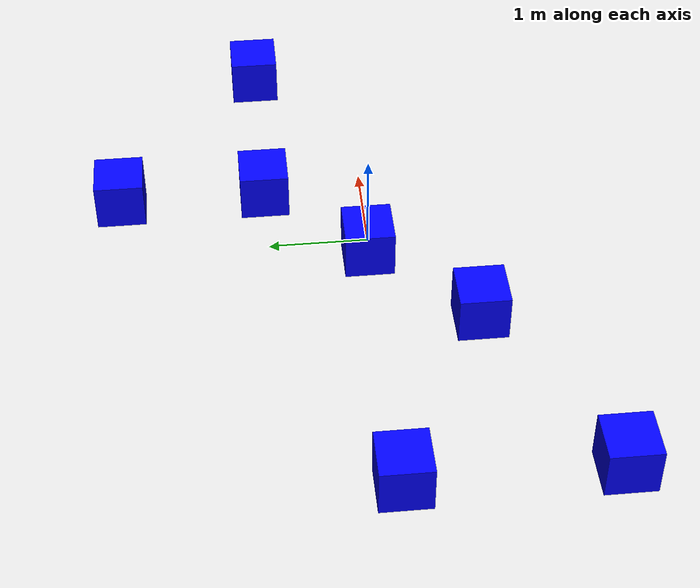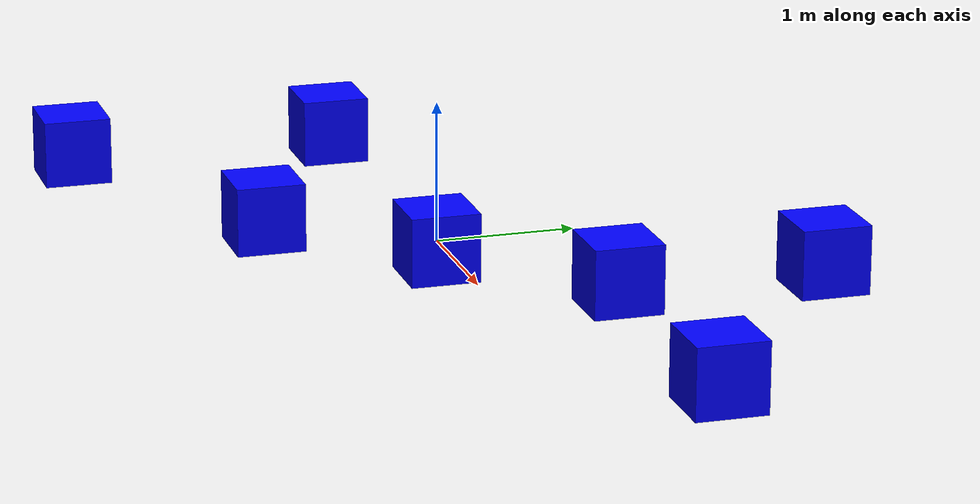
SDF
<sdf version="1.5">
 <world name="default">
  <plugin name="mrs_gazebo_static_transform_republisher_plugin" filename="libMRSGazeboStaticTransformRepublisher.so"/>
  <spherical_coordinates>
   <surface_model>EARTH_WGS84</surface_model>
   <latitude_deg>47.397743</latitude_deg>
   <longitude_deg>8.545594</longitude_deg>
   <elevation>0.0</elevation>
   <heading_deg>0</heading_deg>
  </spherical_coordinates>
  <physics name="default_physics" default="0" type="ode">
   <gravity>0 0 -9.8066</gravity>
   <ode>
    <solver>
     <type>quick</type>
     <iters>10</iters>
     <sor>1.3</sor>
     <use_dynamic_moi_rescaling>0</use_dynamic_moi_rescaling>
    </solver>
    <constraints>
     <cfm>0</cfm>
     <erp>0.2</erp>
     <contact_max_correcting_vel>1000</contact_max_correcting_vel>
     <contact_surface_layer>0.001</contact_surface_layer>
    </constraints>
   </ode>
   <max_step_size>0.004</max_step_size>
   <real_time_factor>1</real_time_factor>
   <real_time_update_rate>250</real_time_update_rate>
   <magnetic_field>6.0e-06 2.3e-05 -4.2e-05</magnetic_field>
  </physics>
  <scene><shadows>false</shadows></scene>
  <light name="sun" type="directional">
   <pose>0 0 1000 0.4 0.2 0</pose>
   <diffuse>1 1 1 1</diffuse>
   <specular>0.6 0.6 0.6 1</specular>
   <direction>0.1 0.1 -0.9</direction>
   <attenuation>
    <range>20</range>
    <constant>0.5</constant>
    <linear>0.01</linear>
    <quadratic>0.001</quadratic>
   </attenuation>
  </light>
  <model name="my_model1">
   <pose>3 1 0 0 0 0</pose>
   <static>true</static>
   <plugin name="hydrodynamics" filename="libHydrodynamicsPlugin.so">
    <wave_model>ocean</wave_model>
    <damping_on>true</damping_on>
    <viscous_drag_on>true</viscous_drag_on>
    <pressure_drag_on>true</pressure_drag_on>
    <markers>
     <update_rate>30</update_rate>
     <water_patch>false</water_patch>
     <waterline>false</waterline>
     <underwater_surface>false</underwater_surface>
    </markers>
   </plugin>
   <link name="link">
    <inertial>
     <mass>1.0</mass>
     <inertia><ixx>0.083</ixx><ixy>0.0</ixy><ixz>0.0</ixz><iyy>0.083</iyy><iyz>0.0</iyz><izz>0.083</izz></inertia>
    </inertial>
    <collision name="collision"><geometry><box><size>0.5 0.5 0.5</size></box></geometry></collision>
    <visual name="visual">
     <geometry><box><size>0.5 0.5 0.5</size></box></geometry>
     <material>
      <ambient>0 0 1 1</ambient>
      <diffuse>0 0 1 1</diffuse>
      <specular>0.1 0.1 0.1 1</specular>
      <emissive>0 0 0 0</emissive>
     </material>
    </visual>
   </link>
  </model>
  <model name="my_model2">
   <pose>1 1 0 0 0 0</pose>
   <static>true</static>
   <plugin name="hydrodynamics" filename="libHydrodynamicsPlugin.so">
    <wave_model>ocean</wave_model>
    <damping_on>true</damping_on>
    <viscous_drag_on>true</viscous_drag_on>
    <pressure_drag_on>true</pressure_drag_on>
    <markers>
     <update_rate>30</update_rate>
     <water_patch>false</water_patch>
     <waterline>false</waterline>
     <underwater_surface>false</underwater_surface>
    </markers>
   </plugin>
   <link name="link">
    <inertial>
     <mass>1.0</mass>
     <inertia><ixx>0.083</ixx><ixy>0.0</ixy><ixz>0.0</ixz><iyy>0.083</iyy><iyz>0.0</iyz><izz>0.083</izz></inertia>
    </inertial>
    <collision name="collision"><geometry><box><size>0.5 0.5 0.5</size></box></geometry></collision>
    <visual name="visual">
     <geometry><box><size>0.5 0.5 0.5</size></box></geometry>
     <material>
      <ambient>0 0 1 1</ambient>
      <diffuse>0 0 1 1</diffuse>
      <specular>0.1 0.1 0.1 1</specular>
      <emissive>0 0 0 0</emissive>
     </material>
    </visual>
   </link>
  </model>
  <model name="my_model3">
   <pose>-3 0 0 0 0 0</pose>
   <static>true</static>
   <plugin name="hydrodynamics" filename="libHydrodynamicsPlugin.so">
    <wave_model>ocean</wave_model>
    <damping_on>true</damping_on>
    <viscous_drag_on>true</viscous_drag_on>
    <pressure_drag_on>true</pressure_drag_on>
    <markers>
     <update_rate>30</update_rate>
     <water_patch>false</water_patch>
     <waterline>false</waterline>
     <underwater_surface>false</underwater_surface>
    </markers>
   </plugin>
   <link name="link">
    <inertial>
     <mass>1.0</mass>
     <inertia><ixx>0.083</ixx><ixy>0.0</ixy><ixz>0.0</ixz><iyy>0.083</iyy><iyz>0.0</iyz><izz>0.083</izz></inertia>
    </inertial>
    <collision name="collision"><geometry><box><size>0.5 0.5 0.5</size></box></geometry></collision>
    <visual name="visual">
     <geometry><box><size>0.5 0.5 0.5</size></box></geometry>
     <material>
      <ambient>0 0 1 1</ambient>
      <diffuse>0 0 1 1</diffuse>
      <specular>0.1 0.1 0.1 1</specular>
      <emissive>0 0 0 0</emissive>
     </material>
    </visual>
   </link>
  </model>
  <model name="my_model4">
   <pose>-3 -2 0 0 0 0</pose>
   <static>true</static>
   <plugin name="hydrodynamics" filename="libHydrodynamicsPlugin.so">
    <wave_model>ocean</wave_model>
    <damping_on>true</damping_on>
    <viscous_drag_on>true</viscous_drag_on>
    <pressure_drag_on>true</pressure_drag_on>
    <markers>
     <update_rate>30</update_rate>
     <water_patch>false</water_patch>
     <waterline>false</waterline>
     <underwater_surface>false</underwater_surface>
    </markers>
   </plugin>
   <link name="link">
    <inertial>
     <mass>1.0</mass>
     <inertia><ixx>0.083</ixx><ixy>0.0</ixy><ixz>0.0</ixz><iyy>0.083</iyy><iyz>0.0</iyz><izz>0.083</izz></inertia>
    </inertial>
    <collision name="collision"><geometry><box><size>0.5 0.5 0.5</size></box></geometry></collision>
    <visual name="visual">
     <geometry><box><size>0.5 0.5 0.5</size></box></geometry>
     <material>
      <ambient>0 0 1 1</ambient>
      <diffuse>0 0 1 1</diffuse>
      <specular>0.1 0.1 0.1 1</specular>
      <emissive>0 0 0 0</emissive>
     </material>
    </visual>
   </link>
  </model>
  <model name="my_model5">
   <pose>-1 -1 0 0 0 0</pose>
   <static>true</static>
   <plugin name="hydrodynamics" filename="libHydrodynamicsPlugin.so">
    <wave_model>ocean</wave_model>
    <damping_on>true</damping_on>
    <viscous_drag_on>true</viscous_drag_on>
    <pressure_drag_on>true</pressure_drag_on>
    <markers>
     <update_rate>30</update_rate>
     <water_patch>false</water_patch>
     <waterline>false</waterline>
     <underwater_surface>false</underwater_surface>
    </markers>
   </plugin>
   <link name="link">
    <inertial>
     <mass>1.0</mass>
     <inertia><ixx>0.083</ixx><ixy>0.0</ixy><ixz>0.0</ixz><iyy>0.083</iyy><iyz>0.0</iyz><izz>0.083</izz></inertia>
    </inertial>
    <collision name="collision"><geometry><box><size>0.5 0.5 0.5</size></box></geometry></collision>
    <visual name="visual">
     <geometry><box><size>0.5 0.5 0.5</size></box></geometry>
     <material>
      <ambient>0 0 1 1</ambient>
      <diffuse>0 0 1 1</diffuse>
      <specular>0.1 0.1 0.1 1</specular>
      <emissive>0 0 0 0</emissive>
     </material>
    </visual>
   </link>
  </model>
  <model name="my_model6">
   <pose>1 2.5 0 0 0 0</pose>
   <static>true</static>
   <plugin name="hydrodynamics" filename="libHydrodynamicsPlugin.so">
    <wave_model>ocean</wave_model>
    <damping_on>true</damping_on>
    <viscous_drag_on>true</viscous_drag_on>
    <pressure_drag_on>true</pressure_drag_on>
    <markers>
     <update_rate>30</update_rate>
     <water_patch>false</water_patch>
     <waterline>false</waterline>
     <underwater_surface>false</underwater_surface>
    </markers>
   </plugin>
   <link name="link">
    <inertial>
     <mass>1.0</mass>
     <inertia><ixx>0.083</ixx><ixy>0.0</ixy><ixz>0.0</ixz><iyy>0.083</iyy><iyz>0.0</iyz><izz>0.083</izz></inertia>
    </inertial>
    <collision name="collision"><geometry><box><size>0.5 0.5 0.5</size></box></geometry></collision>
    <visual name="visual">
     <geometry><box><size>0.5 0.5 0.5</size></box></geometry>
     <material>
      <ambient>0 0 1 1</ambient>
      <diffuse>0 0 1 1</diffuse>
      <specular>0.1 0.1 0.1 1</specular>
      <emissive>0 0 0 0</emissive>
     </material>
    </visual>
   </link>
  </model>
  <model name="my_model7">
   <static>true</static>
   <plugin name="hydrodynamics" filename="libHydrodynamicsPlugin.so">
    <wave_model>ocean</wave_model>
    <damping_on>true</damping_on>
    <viscous_drag_on>true</viscous_drag_on>
    <pressure_drag_on>true</pressure_drag_on>
    <markers>
     <update_rate>30</update_rate>
     <water_patch>false</water_patch>
     <waterline>false</waterline>
     <underwater_surface>false</underwater_surface>
    </markers>
   </plugin>
   <link name="link">
    <inertial>
     <mass>1.0</mass>
     <inertia><ixx>0.083</ixx><ixy>0.0</ixy><ixz>0.0</ixz><iyy>0.083</iyy><iyz>0.0</iyz><izz>0.083</izz></inertia>
    </inertial>
    <collision name="collision"><geometry><box><size>0.5 0.5 0.5</size></box></geometry></collision>
    <visual name="visual">
     <geometry><box><size>0.5 0.5 0.5</size></box></geometry>
     <material>
      <ambient>0 0 1 1</ambient>
      <diffuse>0 0 1 1</diffuse>
      <specular>0.1 0.1 0.1 1</specular>
      <emissive>0 0 0 0</emissive>
     </material>
    </visual>
   </link>
  </model>
 </world>
</sdf>
